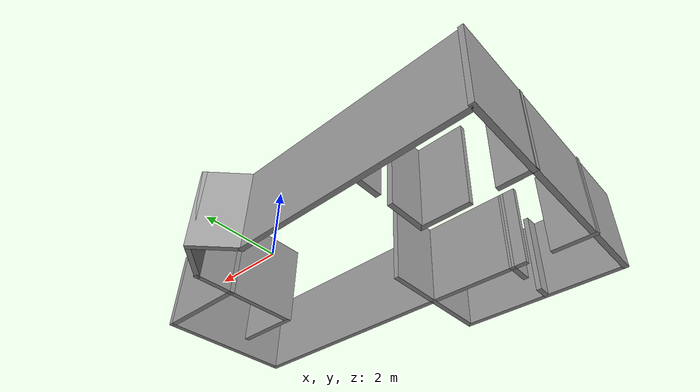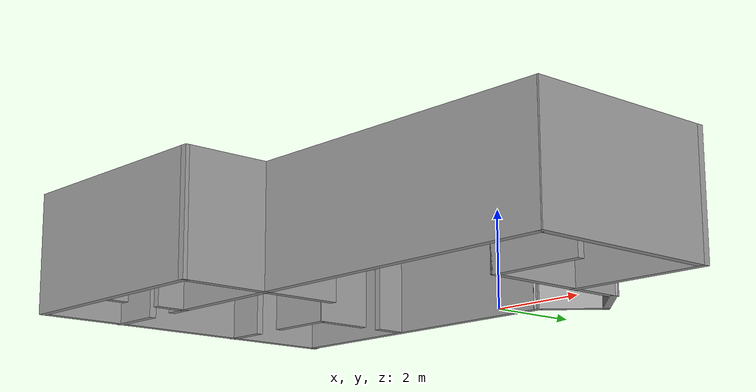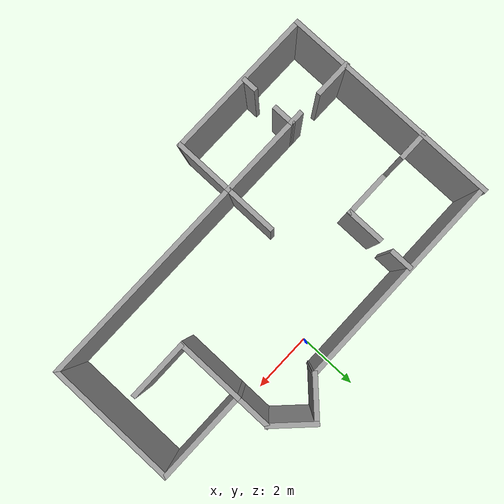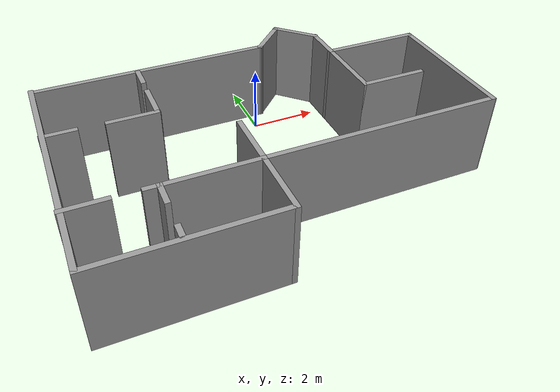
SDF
<?xml version='1.0'?>
<sdf version='1.7'>
  <model name='Building1'>
    <pose>-0.678608 -2.39187 0 0 -0 0</pose>
    <link name='Wall_10'>
      <collision name='Wall_10_Collision'>
        <geometry>
          <box>
            <size>2 0.15 2.5</size>
          </box>
        </geometry>
        <pose>0 0 1.25 0 -0 0</pose>
      </collision>
      <visual name='Wall_10_Visual'>
        <pose>0 0 1.25 0 -0 0</pose>
        <geometry>
          <box>
            <size>2 0.15 2.5</size>
          </box>
        </geometry>
        <material>
          <script>
            <uri>file://media/materials/scripts/gazebo.material</uri>
            <name>Gazebo/Grey</name>
          </script>
          <ambient>1 1 1 1</ambient>
        </material>
        <meta>
          <layer>0</layer>
        </meta>
      </visual>
      <pose>-0.984593 -3.09293 0 0 -0 1.57058</pose>
    </link>
    <link name='Wall_11'>
      <collision name='Wall_11_Collision'>
        <geometry>
          <box>
            <size>6.9996 0.15 2.5</size>
          </box>
        </geometry>
        <pose>0 0 1.25 0 -0 0</pose>
      </collision>
      <visual name='Wall_11_Visual'>
        <pose>0 0 1.25 0 -0 0</pose>
        <geometry>
          <box>
            <size>6.9996 0.15 2.5</size>
          </box>
        </geometry>
        <material>
          <script>
            <uri>file://media/materials/scripts/gazebo.material</uri>
            <name>Gazebo/Grey</name>
          </script>
          <ambient>1 1 1 1</ambient>
        </material>
        <meta>
          <layer>0</layer>
        </meta>
      </visual>
      <pose>2.44041 -2.16793 0 0 -0 6.1e-05</pose>
    </link>
    <link name='Wall_12'>
      <collision name='Wall_12_Collision'>
        <geometry>
          <box>
            <size>4.25 0.15 2.5</size>
          </box>
        </geometry>
        <pose>0 0 1.25 0 -0 0</pose>
      </collision>
      <visual name='Wall_12_Visual'>
        <pose>0 0 1.25 0 -0 0</pose>
        <geometry>
          <box>
            <size>4.25 0.15 2.5</size>
          </box>
        </geometry>
        <material>
          <script>
            <uri>file://media/materials/scripts/gazebo.material</uri>
            <name>Gazebo/Grey</name>
          </script>
          <ambient>1 1 1 1</ambient>
        </material>
        <meta>
          <layer>0</layer>
        </meta>
      </visual>
      <pose>5.86521 -0.117718 0 0 -0 1.5708</pose>
    </link>
    <link name='Wall_13'>
      <collision name='Wall_13_Collision'>
        <geometry>
          <box>
            <size>3 0.15 2.5</size>
          </box>
        </geometry>
        <pose>0 0 1.25 0 -0 0</pose>
      </collision>
      <visual name='Wall_13_Visual'>
        <pose>0 0 1.25 0 -0 0</pose>
        <geometry>
          <box>
            <size>3 0.15 2.5</size>
          </box>
        </geometry>
        <material>
          <script>
            <uri>file://media/materials/scripts/gazebo.material</uri>
            <name>Gazebo/Grey</name>
          </script>
          <ambient>1 1 1 1</ambient>
        </material>
        <meta>
          <layer>0</layer>
        </meta>
      </visual>
      <pose>4.44021 1.93228 0 0 -0 3.14159</pose>
    </link>
    <link name='Wall_14'>
      <collision name='Wall_14_Collision'>
        <geometry>
          <box>
            <size>1.25 0.15 2.5</size>
          </box>
        </geometry>
        <pose>0 0 1.25 0 -0 0</pose>
      </collision>
      <visual name='Wall_14_Visual'>
        <pose>0 0 1.25 0 -0 0</pose>
        <geometry>
          <box>
            <size>1.25 0.15 2.5</size>
          </box>
        </geometry>
        <material>
          <script>
            <uri>file://media/materials/scripts/gazebo.material</uri>
            <name>Gazebo/Grey</name>
          </script>
          <ambient>1 1 1 1</ambient>
        </material>
        <meta>
          <layer>0</layer>
        </meta>
      </visual>
      <pose>3.01521 2.48228 0 0 -0 1.5708</pose>
    </link>
    <link name='Wall_15'>
      <collision name='Wall_15_Collision'>
        <geometry>
          <box>
            <size>1.5 0.15 2.5</size>
          </box>
        </geometry>
        <pose>0 0 1.25 0 -0 0</pose>
      </collision>
      <visual name='Wall_15_Visual'>
        <pose>0 0 1.25 0 -0 0</pose>
        <geometry>
          <box>
            <size>1.5 0.15 2.5</size>
          </box>
        </geometry>
        <material>
          <script>
            <uri>file://media/materials/scripts/gazebo.material</uri>
            <name>Gazebo/Grey</name>
          </script>
          <ambient>1 1 1 1</ambient>
        </material>
        <meta>
          <layer>0</layer>
        </meta>
      </visual>
      <pose>2.53791 3.50958 0 0 -0 2.35619</pose>
    </link>
    <link name='Wall_16'>
      <collision name='Wall_16_Collision'>
        <geometry>
          <box>
            <size>1.5 0.15 2.5</size>
          </box>
        </geometry>
        <pose>0 0 1.25 0 -0 0</pose>
      </collision>
      <visual name='Wall_16_Visual'>
        <pose>0 0 1.25 0 -0 0</pose>
        <geometry>
          <box>
            <size>1.5 0.15 2.5</size>
          </box>
        </geometry>
        <material>
          <script>
            <uri>file://media/materials/scripts/gazebo.material</uri>
            <name>Gazebo/Grey</name>
          </script>
          <ambient>1 1 1 1</ambient>
        </material>
        <meta>
          <layer>0</layer>
        </meta>
      </visual>
      <pose>1.58332 3.50958 0 0 -0 -2.35619</pose>
    </link>
    <link name='Wall_17'>
      <collision name='Wall_17_Collision'>
        <geometry>
          <box>
            <size>7 0.15 2.5</size>
          </box>
        </geometry>
        <pose>0 0 1.25 0 -0 0</pose>
      </collision>
      <visual name='Wall_17_Visual'>
        <pose>0 0 1.25 0 -0 0</pose>
        <geometry>
          <box>
            <size>7 0.15 2.5</size>
          </box>
        </geometry>
        <material>
          <script>
            <uri>file://media/materials/scripts/gazebo.material</uri>
            <name>Gazebo/Grey</name>
          </script>
          <ambient>1 1 1 1</ambient>
        </material>
        <meta>
          <layer>0</layer>
        </meta>
      </visual>
      <pose>-2.31898 3.03228 0 0 -0 3.14159</pose>
    </link>
    <link name='Wall_21'>
      <collision name='Wall_21_Collision'>
        <geometry>
          <box>
            <size>2.7504 0.15 2.5</size>
          </box>
        </geometry>
        <pose>0 0 1.25 0 -0 0</pose>
      </collision>
      <visual name='Wall_21_Visual'>
        <pose>0 0 1.25 0 -0 0</pose>
        <geometry>
          <box>
            <size>2.7504 0.15 2.5</size>
          </box>
        </geometry>
        <material>
          <script>
            <uri>file://media/materials/scripts/gazebo.material</uri>
            <name>Gazebo/Grey</name>
          </script>
          <ambient>1 1 1 1</ambient>
        </material>
        <meta>
          <layer>0</layer>
        </meta>
      </visual>
      <pose>-2.28459 -2.16793 0 0 -0 3.14143</pose>
    </link>
    <link name='Wall_22'>
      <collision name='Wall_22_Collision'>
        <geometry>
          <box>
            <size>0.75 0.15 2.5</size>
          </box>
        </geometry>
        <pose>0 0 1.25 0 -0 0</pose>
      </collision>
      <visual name='Wall_22_Visual'>
        <pose>0 0 1.25 0 -0 0</pose>
        <geometry>
          <box>
            <size>0.75 0.15 2.5</size>
          </box>
        </geometry>
        <material>
          <script>
            <uri>file://media/materials/scripts/gazebo.material</uri>
            <name>Gazebo/Grey</name>
          </script>
          <ambient>1 1 1 1</ambient>
        </material>
        <meta>
          <layer>0</layer>
        </meta>
      </visual>
      <pose>-3.58479 -2.46772 0 0 -0 -1.5708</pose>
    </link>
    <link name='Wall_24'>
      <collision name='Wall_24_Collision'>
        <geometry>
          <box>
            <size>0.5 0.15 2.5</size>
          </box>
        </geometry>
        <pose>0 0 1.25 0 -0 0</pose>
      </collision>
      <visual name='Wall_24_Visual'>
        <pose>0 0 1.25 0 -0 0</pose>
        <geometry>
          <box>
            <size>0.5 0.15 2.5</size>
          </box>
        </geometry>
        <material>
          <script>
            <uri>file://media/materials/scripts/gazebo.material</uri>
            <name>Gazebo/Grey</name>
          </script>
          <ambient>1 1 1 1</ambient>
        </material>
        <meta>
          <layer>0</layer>
        </meta>
      </visual>
      <pose>-3.5839 -3.78725 0 0 -0 1.5708</pose>
    </link>
    <link name='Wall_26'>
      <collision name='Wall_26_Collision'>
        <geometry>
          <box>
            <size>0.5 0.15 2.5</size>
          </box>
        </geometry>
        <pose>0 0 1.25 0 -0 0</pose>
      </collision>
      <visual name='Wall_26_Visual'>
        <pose>0 0 1.25 0 -0 0</pose>
        <geometry>
          <box>
            <size>0.5 0.15 2.5</size>
          </box>
        </geometry>
        <material>
          <script>
            <uri>file://media/materials/scripts/gazebo.material</uri>
            <name>Gazebo/Grey</name>
          </script>
          <ambient>1 1 1 1</ambient>
        </material>
        <meta>
          <layer>0</layer>
        </meta>
      </visual>
      <pose>-3.75979 -2.16772 0 0 -0 3.14159</pose>
    </link>
    <link name='Wall_28'>
      <collision name='Wall_28_Collision'>
        <geometry>
          <box>
            <size>1.25 0.15 2.5</size>
          </box>
        </geometry>
        <pose>0 0 1.25 0 -0 0</pose>
      </collision>
      <visual name='Wall_28_Visual'>
        <pose>0 0 1.25 0 -0 0</pose>
        <geometry>
          <box>
            <size>1.25 0.15 2.5</size>
          </box>
        </geometry>
        <material>
          <script>
            <uri>file://media/materials/scripts/gazebo.material</uri>
            <name>Gazebo/Grey</name>
          </script>
          <ambient>1 1 1 1</ambient>
        </material>
        <meta>
          <layer>0</layer>
        </meta>
      </visual>
      <pose>-5.31521 -2.16762 0 0 -0 0</pose>
    </link>
    <link name='Wall_30'>
      <collision name='Wall_30_Collision'>
        <geometry>
          <box>
            <size>2.25 0.15 2.5</size>
          </box>
        </geometry>
        <pose>0 0 1.25 0 -0 0</pose>
      </collision>
      <visual name='Wall_30_Visual'>
        <pose>0 0 1.25 0 -0 0</pose>
        <geometry>
          <box>
            <size>2.25 0.15 2.5</size>
          </box>
        </geometry>
        <material>
          <script>
            <uri>file://media/materials/scripts/gazebo.material</uri>
            <name>Gazebo/Grey</name>
          </script>
          <ambient>1 1 1 1</ambient>
        </material>
        <meta>
          <layer>0</layer>
        </meta>
      </visual>
      <pose>3.01521 0.882282 0 0 -0 -1.5708</pose>
    </link>
    <link name='Wall_31'>
      <collision name='Wall_31_Collision'>
        <geometry>
          <box>
            <size>2 0.15 2.5</size>
          </box>
        </geometry>
        <pose>0 0 1.25 0 -0 0</pose>
      </collision>
      <visual name='Wall_31_Visual'>
        <pose>0 0 1.25 0 -0 0</pose>
        <geometry>
          <box>
            <size>2 0.15 2.5</size>
          </box>
        </geometry>
        <material>
          <script>
            <uri>file://media/materials/scripts/gazebo.material</uri>
            <name>Gazebo/Grey</name>
          </script>
          <ambient>1 1 1 1</ambient>
        </material>
        <meta>
          <layer>0</layer>
        </meta>
      </visual>
      <pose>3.94021 -0.167718 0 0 -0 0</pose>
    </link>
    <link name='Wall_33'>
      <collision name='Wall_33_Collision'>
        <geometry>
          <box>
            <size>1.75 0.15 2.5</size>
          </box>
        </geometry>
        <pose>0 0 1.25 0 -0 0</pose>
      </collision>
      <visual name='Wall_33_Visual'>
        <pose>0 0 1.25 0 -0 0</pose>
        <geometry>
          <box>
            <size>1.75 0.15 2.5</size>
          </box>
        </geometry>
        <material>
          <script>
            <uri>file://media/materials/scripts/gazebo.material</uri>
            <name>Gazebo/Grey</name>
          </script>
          <ambient>1 1 1 1</ambient>
        </material>
        <meta>
          <layer>0</layer>
        </meta>
      </visual>
      <pose>-0.984392 -1.36814 0 0 -0 1.5708</pose>
    </link>
    <link name='Wall_35'>
      <collision name='Wall_35_Collision'>
        <geometry>
          <box>
            <size>0.75 0.15 2.5</size>
          </box>
        </geometry>
        <pose>0 0 1.25 0 -0 0</pose>
      </collision>
      <visual name='Wall_35_Visual'>
        <pose>0 0 1.25 0 -0 0</pose>
        <geometry>
          <box>
            <size>0.75 0.15 2.5</size>
          </box>
        </geometry>
        <material>
          <script>
            <uri>file://media/materials/scripts/gazebo.material</uri>
            <name>Gazebo/Grey</name>
          </script>
          <ambient>1 1 1 1</ambient>
        </material>
        <meta>
          <layer>0</layer>
        </meta>
      </visual>
      <pose>-2.80825 2.68815 0 0 -0 -1.5708</pose>
    </link>
    <link name='Wall_38'>
      <collision name='Wall_38_Collision'>
        <geometry>
          <box>
            <size>1.25 0.15 2.5</size>
          </box>
        </geometry>
        <pose>0 0 1.25 0 -0 0</pose>
      </collision>
      <visual name='Wall_38_Visual'>
        <pose>0 0 1.25 0 -0 0</pose>
        <geometry>
          <box>
            <size>1.25 0.15 2.5</size>
          </box>
        </geometry>
        <material>
          <script>
            <uri>file://media/materials/scripts/gazebo.material</uri>
            <name>Gazebo/Grey</name>
          </script>
          <ambient>1 1 1 1</ambient>
        </material>
        <meta>
          <layer>0</layer>
        </meta>
      </visual>
      <pose>-2.82346 1.3127 0 0 -0 -1.5708</pose>
    </link>
    <link name='Wall_39'>
      <collision name='Wall_39_Collision'>
        <geometry>
          <box>
            <size>1.46958 0.15 2.5</size>
          </box>
        </geometry>
        <pose>0 0 1.25 0 -0 0</pose>
      </collision>
      <visual name='Wall_39_Visual'>
        <pose>0 0 1.25 0 -0 0</pose>
        <geometry>
          <box>
            <size>1.46958 0.15 2.5</size>
          </box>
        </geometry>
        <material>
          <script>
            <uri>file://media/materials/scripts/gazebo.material</uri>
            <name>Gazebo/Grey</name>
          </script>
          <ambient>1 1 1 1</ambient>
        </material>
        <meta>
          <layer>0</layer>
        </meta>
      </visual>
      <pose>-3.49846 0.7627 0 0 -0 3.14159</pose>
    </link>
    <link name='Wall_41'>
      <collision name='Wall_41_Collision'>
        <geometry>
          <box>
            <size>1 0.15 2.5</size>
          </box>
        </geometry>
        <pose>0 0 1.25 0 -0 0</pose>
      </collision>
      <visual name='Wall_41_Visual'>
        <pose>0 0 1.25 0 -0 0</pose>
        <geometry>
          <box>
            <size>1 0.15 2.5</size>
          </box>
        </geometry>
        <material>
          <script>
            <uri>file://media/materials/scripts/gazebo.material</uri>
            <name>Gazebo/Grey</name>
          </script>
          <ambient>1 1 1 1</ambient>
        </material>
        <meta>
          <layer>0</layer>
        </meta>
      </visual>
      <pose>-5.425 0.782879 0 0 -0 0</pose>
    </link>
    <link name='Wall_8'>
      <collision name='Wall_8_Collision'>
        <geometry>
          <box>
            <size>7.25 0.15 2.5</size>
          </box>
        </geometry>
        <pose>0 0 1.25 0 -0 0</pose>
      </collision>
      <visual name='Wall_8_Visual'>
        <pose>0 0 1.25 0 -0 0</pose>
        <geometry>
          <box>
            <size>7.25 0.15 2.5</size>
          </box>
        </geometry>
        <material>
          <script>
            <uri>file://media/materials/scripts/gazebo.material</uri>
            <name>Gazebo/Grey</name>
          </script>
          <ambient>1 1 1 1</ambient>
        </material>
        <meta>
          <layer>0</layer>
        </meta>
      </visual>
      <pose>-5.83479 -0.467718 0 0 -0 -1.5708</pose>
    </link>
    <link name='Wall_9'>
      <collision name='Wall_9_Collision'>
        <geometry>
          <box>
            <size>5 0.15 2.5</size>
          </box>
        </geometry>
        <pose>0 0 1.25 0 -0 0</pose>
      </collision>
      <visual name='Wall_9_Visual'>
        <pose>0 0 1.25 0 -0 0</pose>
        <geometry>
          <box>
            <size>5 0.15 2.5</size>
          </box>
        </geometry>
        <material>
          <script>
            <uri>file://media/materials/scripts/gazebo.material</uri>
            <name>Gazebo/Grey</name>
          </script>
          <ambient>1 1 1 1</ambient>
        </material>
        <meta>
          <layer>0</layer>
        </meta>
      </visual>
      <pose>-3.40979 -4.01772 0 0 -0 0</pose>
    </link>
    <static>1</static>
  </model>
</sdf>
